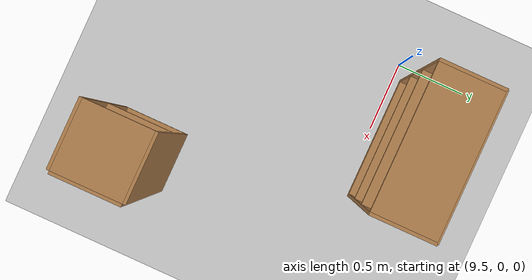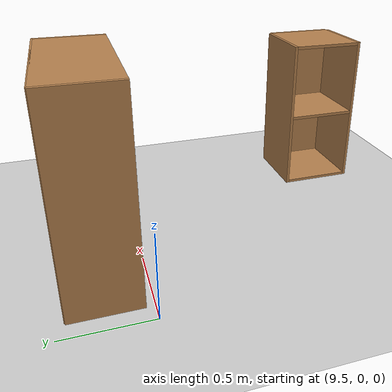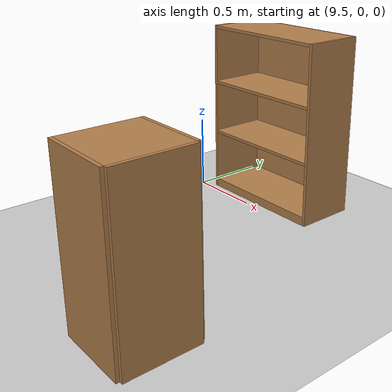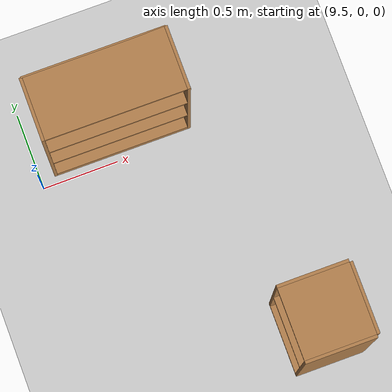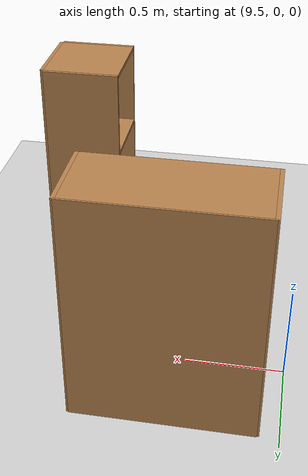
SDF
<sdf version="1.7">
 <world name="default">
  <model name="ground_plane">
   <static>1</static>
   <link name="link">
    <collision name="collision">
     <geometry><plane><normal>0 0 1</normal><size>100 100</size></plane></geometry>
     <surface>
      <contact><collide_bitmask>65535</collide_bitmask></contact>
      <friction><ode><mu>100</mu><mu2>50</mu2></ode></friction>
     </surface>
    </collision>
    <visual name="visual">
     <cast_shadows>0</cast_shadows>
     <geometry><plane><normal>0 0 1</normal><size>100 100</size></plane></geometry>
     <material>
      <script><uri>file://media/materials/scripts/gazebo.material</uri><name>Gazebo/Grey</name></script>
     </material>
    </visual>
   </link>
  </model>
  <model name="bookshelf_1">
   <static>1</static>
   <link name="link">
    <inertial><mass>1</mass></inertial>
    <collision name="back">
     <pose>0 0.005 0.6 0 -0 0</pose>
     <geometry><box><size>0.9 0.01 1.2</size></box></geometry>
    </collision>
    <visual name="visual1">
     <pose>0 0.005 0.6 0 -0 0</pose>
     <geometry><box><size>0.9 0.01 1.2</size></box></geometry>
     <material>
      <script><uri>file://media/materials/scripts/gazebo.material</uri><name>Gazebo/Wood</name></script>
     </material>
    </visual>
    <collision name="left_side">
     <pose>0.45 -0.195 0.6 0 -0 0</pose>
     <geometry><box><size>0.02 0.4 1.2</size></box></geometry>
    </collision>
    <visual name="visual2">
     <pose>0.45 -0.195 0.6 0 -0 0</pose>
     <geometry><box><size>0.02 0.4 1.2</size></box></geometry>
     <material>
      <script><uri>file://media/materials/scripts/gazebo.material</uri><name>Gazebo/Wood</name></script>
     </material>
    </visual>
    <collision name="right_side">
     <pose>-0.45 -0.195 0.6 0 -0 0</pose>
     <geometry><box><size>0.02 0.4 1.2</size></box></geometry>
    </collision>
    <visual name="visual3">
     <pose>-0.45 -0.195 0.6 0 -0 0</pose>
     <geometry><box><size>0.02 0.4 1.2</size></box></geometry>
     <material>
      <script><uri>file://media/materials/scripts/gazebo.material</uri><name>Gazebo/Wood</name></script>
     </material>
    </visual>
    <collision name="bottom">
     <pose>0 -0.195 0.03 0 -0 0</pose>
     <geometry><box><size>0.88 0.4 0.06</size></box></geometry>
    </collision>
    <visual name="visual4">
     <pose>0 -0.195 0.03 0 -0 0</pose>
     <geometry><box><size>0.88 0.4 0.06</size></box></geometry>
     <material>
      <script><uri>file://media/materials/scripts/gazebo.material</uri><name>Gazebo/Wood</name></script>
     </material>
    </visual>
    <collision name="top">
     <pose>0 -0.195 1.19 0 -0 0</pose>
     <geometry><box><size>0.88 0.4 0.02</size></box></geometry>
    </collision>
    <visual name="visual5">
     <pose>0 -0.195 1.19 0 -0 0</pose>
     <geometry><box><size>0.88 0.4 0.02</size></box></geometry>
     <material>
      <script><uri>file://media/materials/scripts/gazebo.material</uri><name>Gazebo/Wood</name></script>
     </material>
    </visual>
    <collision name="low_shelf">
     <pose>0 -0.195 0.43 0 -0 0</pose>
     <geometry><box><size>0.88 0.4 0.02</size></box></geometry>
    </collision>
    <visual name="visual6">
     <pose>0 -0.195 0.43 0 -0 0</pose>
     <geometry><box><size>0.88 0.4 0.02</size></box></geometry>
     <material>
      <script><uri>file://media/materials/scripts/gazebo.material</uri><name>Gazebo/Wood</name></script>
     </material>
    </visual>
    <collision name="high_shelf">
     <pose>0 -0.195 0.8 0 -0 0</pose>
     <geometry><box><size>0.88 0.4 0.02</size></box></geometry>
    </collision>
    <visual name="visual7">
     <pose>0 -0.195 0.8 0 -0 0</pose>
     <geometry><box><size>0.88 0.4 0.02</size></box></geometry>
     <material>
      <script><uri>file://media/materials/scripts/gazebo.material</uri><name>Gazebo/Wood</name></script>
     </material>
    </visual>
   </link>
   <pose>10.0538 0.443931 0 0 -0 0</pose>
  </model>
  <model name="cabinet">
   <static>1</static>
   <link name="cabinet_bottom_plate">
    <inertial>
     <pose>0 0 -1 0 -0 0</pose>
     <inertia><ixx>2.05</ixx><ixy>0</ixy><ixz>0</ixz><iyy>2.05</iyy><iyz>0</iyz><izz>2.05</izz></inertia>
     <mass>25</mass>
    </inertial>
    <collision name="cabinet_bottom_plate_geom">
     <pose>0 0 0.01 0 -0 0</pose>
     <geometry><box><size>0.45 0.45 0.02</size></box></geometry>
    </collision>
    <visual name="cabinet_bottom_plate_geom_visual">
     <pose>0 0 0.01 0 -0 0</pose>
     <geometry><box><size>0.45 0.45 0.02</size></box></geometry>
     <material>
      <script><uri>file://media/materials/scripts/gazebo.material</uri><name>Gazebo/Wood</name></script>
     </material>
    </visual>
    <collision name="cabinet_bottom_plate_geom_cabinet_back_plate">
     <pose>0.235 0 0.51 0 -0 0</pose>
     <geometry><box><size>0.02 0.45 1.02</size></box></geometry>
    </collision>
    <visual name="cabinet_bottom_plate_geom_cabinet_back_plate_visual">
     <pose>0.235 0 0.51 0 -0 0</pose>
     <geometry><box><size>0.02 0.45 1.02</size></box></geometry>
     <material>
      <script><uri>file://media/materials/scripts/gazebo.material</uri><name>Gazebo/Wood</name></script>
     </material>
    </visual>
    <collision name="cabinet_bottom_plate_geom_cabinet_left_plate">
     <pose>0 0.235 0.51 0 -0 0</pose>
     <geometry><box><size>0.45 0.02 1.02</size></box></geometry>
    </collision>
    <visual name="cabinet_bottom_plate_geom_cabinet_left_plate_visual">
     <pose>0 0.235 0.51 0 -0 0</pose>
     <geometry><box><size>0.45 0.02 1.02</size></box></geometry>
     <material>
      <script><uri>file://media/materials/scripts/gazebo.material</uri><name>Gazebo/Wood</name></script>
     </material>
    </visual>
    <collision name="cabinet_bottom_plate_geom_cabinet_middle_plate">
     <pose>0 0 0.51 0 -0 0</pose>
     <geometry><box><size>0.45 0.45 0.02</size></box></geometry>
    </collision>
    <visual name="cabinet_bottom_plate_geom_cabinet_middle_plate_visual">
     <pose>0 0 0.51 0 -0 0</pose>
     <geometry><box><size>0.45 0.45 0.02</size></box></geometry>
     <material>
      <script><uri>file://media/materials/scripts/gazebo.material</uri><name>Gazebo/Wood</name></script>
     </material>
    </visual>
    <collision name="cabinet_bottom_plate_geom_cabinet_right_plate">
     <pose>0 -0.235 0.51 0 -0 0</pose>
     <geometry><box><size>0.45 0.02 1.02</size></box></geometry>
    </collision>
    <visual name="cabinet_bottom_plate_geom_cabinet_right_plate_visual">
     <pose>0 -0.235 0.51 0 -0 0</pose>
     <geometry><box><size>0.45 0.02 1.02</size></box></geometry>
     <material>
      <script><uri>file://media/materials/scripts/gazebo.material</uri><name>Gazebo/Wood</name></script>
     </material>
    </visual>
    <collision name="cabinet_bottom_plate_geom_cabinet_top_plate">
     <pose>0 0 1.01 0 -0 0</pose>
     <geometry><box><size>0.45 0.45 0.02</size></box></geometry>
    </collision>
    <visual name="cabinet_bottom_plate_geom_cabinet_top_plate_visual">
     <pose>0 0 1.01 0 -0 0</pose>
     <geometry><box><size>0.45 0.45 0.02</size></box></geometry>
     <material>
      <script><uri>file://media/materials/scripts/gazebo.material</uri><name>Gazebo/Wood</name></script>
     </material>
    </visual>
   </link>
   <pose>10.8141 -1.42681 0 0 -0 0</pose>
  </model>
 </world>
</sdf>
